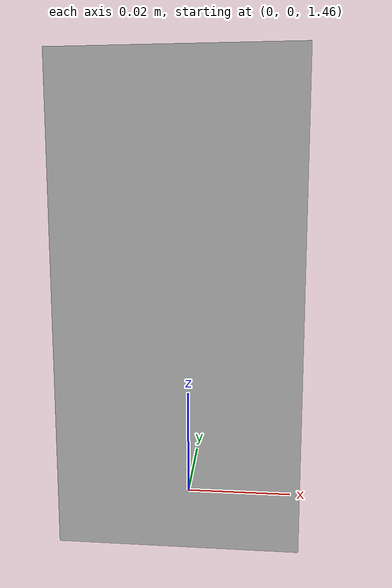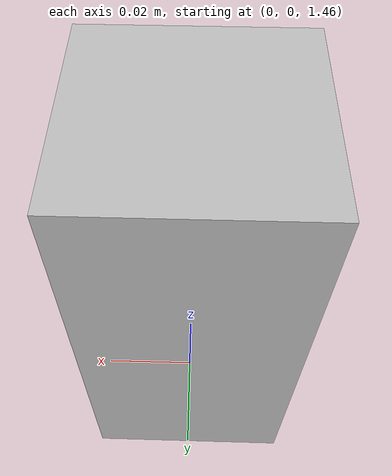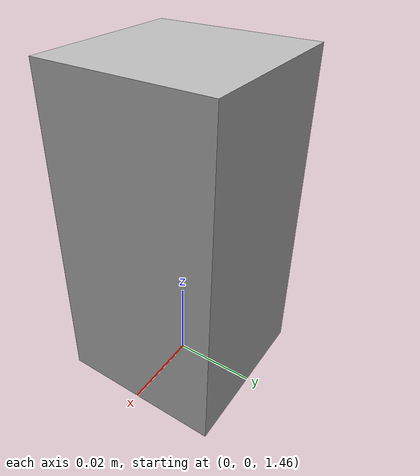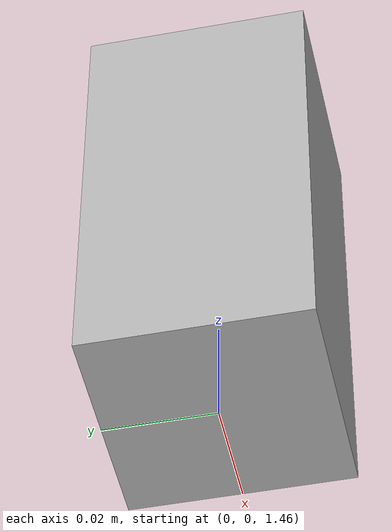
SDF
<?xml version="1.0" ?>
<sdf version="1.9">
  <model name="gripper_depth_camera">
    <static>true</static>

    <!-- Kamera über dem Förderband -->
    <pose>0 0 1.5 0 1.5708 0</pose>

    <link name="camera_link">
      <visual name="camera_visual">
        <geometry>
          <box>
            <size>0.08 0.04 0.04</size>
          </box>
        </geometry>
      </visual>

      <sensor name="gripper_camera" type="camera">
        <always_on>true</always_on>
        <update_rate>15</update_rate>
        <topic>/gripper_camera/image</topic>

        <camera>
          <horizontal_fov>1.047</horizontal_fov>
          <image>
            <width>640</width>
            <height>480</height>
            <format>R8G8B8</format>
          </image>
          <clip>
            <near>0.05</near>
            <far>5.0</far>
          </clip>
        </camera>
      </sensor>
    </link>
  </model>
</sdf>
